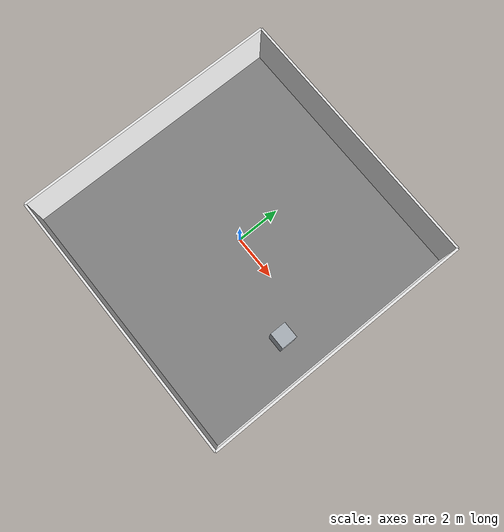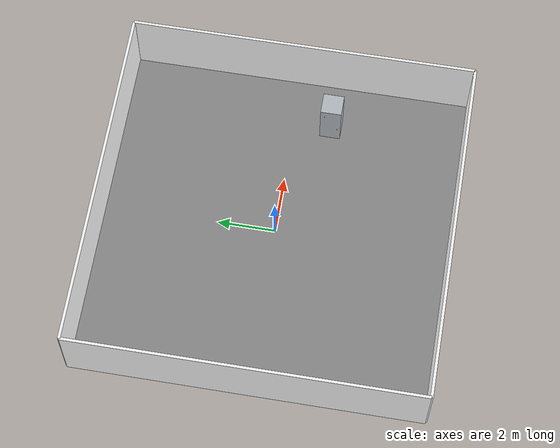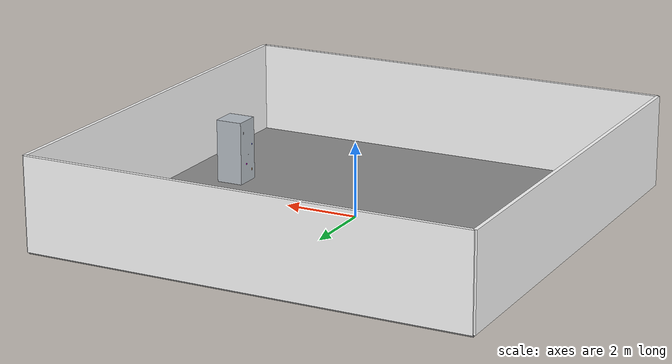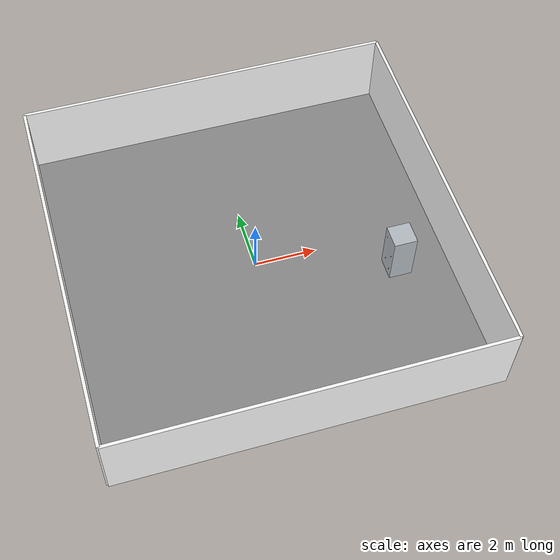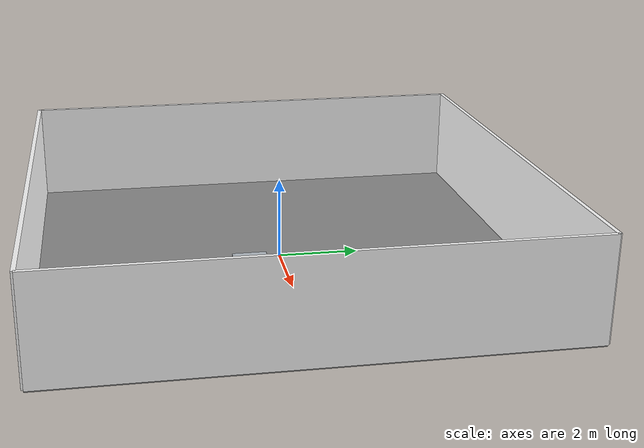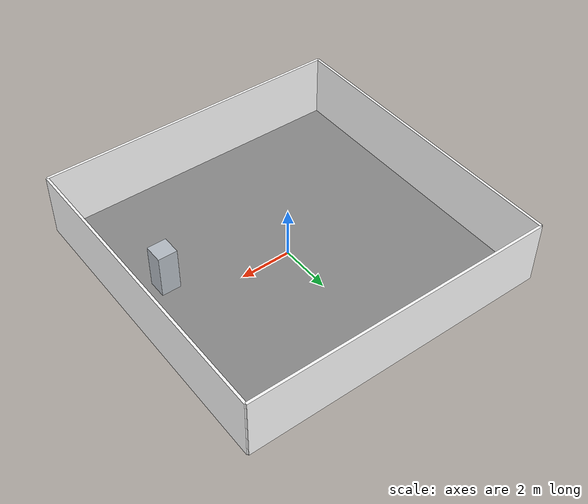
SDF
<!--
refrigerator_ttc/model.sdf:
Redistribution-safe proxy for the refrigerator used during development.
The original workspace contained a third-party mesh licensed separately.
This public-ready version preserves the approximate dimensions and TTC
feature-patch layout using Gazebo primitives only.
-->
<sdf version="1.9">
 <world name="default">
  <plugin filename="gz-sim-physics-system" name="gz::sim::systems::Physics"/>
  <plugin filename="gz-sim-user-commands-system" name="gz::sim::systems::UserCommands"/>
  <plugin filename="gz-sim-scene-broadcaster-system" name="gz::sim::systems::SceneBroadcaster"/>
  <plugin filename="gz-sim-sensors-system" name="gz::sim::systems::Sensors">
   <render_engine>ogre2</render_engine>
  </plugin>
  <plugin filename="gz-sim-imu-system" name="gz::sim::systems::Imu"/>
  <light type="directional" name="sun">
   <cast_shadows>false</cast_shadows>
   <pose>0 0 8 0 0 0</pose>
   <diffuse>0.9 0.9 0.9 1</diffuse>
   <specular>0.25 0.25 0.25 1</specular>
   <attenuation>
    <range>1000</range>
    <constant>0.9</constant>
    <linear>0.01</linear>
    <quadratic>0.001</quadratic>
   </attenuation>
   <direction>-0.4 0.2 -0.9</direction>
  </light>
  <model name="floor">
   <static>true</static>
   <pose>0 0 -0.025 0 0 0</pose>
   <link name="floor_link">
    <collision name="floor_collision"><geometry><box><size>12 12 0.05</size></box></geometry></collision>
    <visual name="floor_visual">
     <geometry><box><size>12 12 0.05</size></box></geometry>
     <material>
      <ambient>0.35 0.35 0.35 1</ambient>
      <diffuse>0.55 0.55 0.55 1</diffuse>
      <specular>0.10 0.10 0.10 1</specular>
     </material>
    </visual>
   </link>
  </model>
  <model name="front_wall">
   <static>true</static>
   <pose>6 0 1.25 0 0 0</pose>
   <link name="wall_link">
    <collision name="collision"><geometry><box><size>0.10 12 2.5</size></box></geometry></collision>
    <visual name="visual">
     <geometry><box><size>0.10 12 2.5</size></box></geometry>
     <material><ambient>1.0 1.0 1.0 1</ambient><diffuse>1.0 1.0 1.0 1</diffuse></material>
    </visual>
   </link>
  </model>
  <model name="back_wall">
   <static>true</static>
   <pose>-6 0 1.25 0 0 0</pose>
   <link name="wall_link">
    <collision name="collision"><geometry><box><size>0.10 12 2.5</size></box></geometry></collision>
    <visual name="visual">
     <geometry><box><size>0.10 12 2.5</size></box></geometry>
     <material><ambient>1.0 1.0 1.0 1</ambient><diffuse>1.0 1.0 1.0 1</diffuse></material>
    </visual>
   </link>
  </model>
  <model name="left_wall">
   <static>true</static>
   <pose>0 6 1.25 0 0 0</pose>
   <link name="wall_link">
    <collision name="collision"><geometry><box><size>12 0.10 2.5</size></box></geometry></collision>
    <visual name="visual">
     <geometry><box><size>12 0.10 2.5</size></box></geometry>
     <material><ambient>1.0 1.0 1.0 1</ambient><diffuse>1.0 1.0 1.0 1</diffuse></material>
    </visual>
   </link>
  </model>
  <model name="right_wall">
   <static>true</static>
   <pose>0 -6 1.25 0 0 0</pose>
   <link name="wall_link">
    <collision name="collision"><geometry><box><size>12 0.10 2.5</size></box></geometry></collision>
    <visual name="visual">
     <geometry><box><size>12 0.10 2.5</size></box></geometry>
     <material><ambient>1.0 1.0 1.0 1</ambient><diffuse>1.0 1.0 1.0 1</diffuse></material>
    </visual>
   </link>
  </model>
  <physics name="physics" type="ode">
   <max_step_size>0.001</max_step_size>
   <real_time_factor>1.0</real_time_factor>
   <real_time_update_rate>1000</real_time_update_rate>
  </physics>
  <scene>
   <ambient>0.35 0.35 0.35 1</ambient>
   <background>0.70 0.78 0.85 1</background>
   <shadows>false</shadows>
  </scene>
  <include>
   <name>target_refrigerator</name>
   <pose>4.3 -1.3 0.0 0 0 -3.142</pose>
   <static>true</static>
   <uri>model://refrigerator_ttc</uri>
  </include>
 </world>
</sdf>

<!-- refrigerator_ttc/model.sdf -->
<sdf version="1.9">
  <model name="refrigerator_ttc">
    <static>true</static>
    <link name="base_link">
      <visual name="refrigerator_body">
        <pose>0 0 0.867923 0 0 0</pose>
        <geometry>
          <box>
            <size>0.734673 0.7239 1.73585</size>
          </box>
        </geometry>
        <material>
          <ambient>0.72 0.75 0.78 1</ambient>
          <diffuse>0.72 0.75 0.78 1</diffuse>
          <specular>0.25 0.25 0.25 1</specular>
        </material>
      </visual>
      <collision name="refrigerator_collision">
        <pose>0 0 0.867923 0 0 0</pose>
        <geometry>
          <box>
            <size>0.734673 0.7239 1.73585</size>
          </box>
        </geometry>
      </collision>
            <!-- TTC FEATURE PATCHES                                       -->
            <!-- Thin visual markers placed slightly in front of fridge    -->

            <visual name="ttc_feature_01">
                <pose>0.34 -0.22 1.42 0 0 0</pose>
                <geometry>
                    <box>
                        <size>0.07 0.008 0.07</size>
                    </box>
                </geometry>
                <material>
                    <ambient>1 1 1 1</ambient>
                    <diffuse>1 1 1 1</diffuse>
                </material>
            </visual>

            <visual name="ttc_feature_02">
                <pose>0.34 0.18 1.32 0 0 0</pose>
                <geometry>
                    <box>
                        <size>0.05 0.008 0.09</size>
                    </box>
                </geometry>
                <material>
                    <ambient>0 0 0 1</ambient>
                    <diffuse>0 0 0 1</diffuse>
                </material>
            </visual>

            <visual name="ttc_feature_03">
                <pose>0.34 -0.10 1.12 0 0 0.7854</pose>
                <geometry>
                    <box>
                        <size>0.06 0.008 0.06</size>
                    </box>
                </geometry>
                <material>
                    <ambient>1 0 0 1</ambient>
                    <diffuse>1 0 0 1</diffuse>
                </material>
            </visual>

            <visual name="ttc_feature_04">
                <pose>0.34 0.23 1.00 0 0 0</pose>
                <geometry>
                    <box>
                        <size>0.08 0.008 0.04</size>
                    </box>
                </geometry>
                <material>
                    <ambient>0 0 1 1</ambient>
                    <diffuse>0 0 1 1</diffuse>
                </material>
            </visual>

            <visual name="ttc_feature_05">
                <pose>0.34 -0.24 0.88 0 0 0</pose>
                <geometry>
                    <box>
                        <size>0.045 0.008 0.10</size>
                    </box>
                </geometry>
                <material>
                    <ambient>1 1 0 1</ambient>
                    <diffuse>1 1 0 1</diffuse>
                </material>
            </visual>

            <visual name="ttc_feature_06">
                <pose>0.34 0.02 0.78 0 0 0.7854</pose>
                <geometry>
                    <box>
                        <size>0.07 0.008 0.07</size>
                    </box>
                </geometry>
                <material>
                    <ambient>1 1 1 1</ambient>
                    <diffuse>1 1 1 1</diffuse>
                </material>
            </visual>

            <visual name="ttc_feature_07">
                <pose>0.34 0.25 0.64 0 0 0</pose>
                <geometry>
                    <box>
                        <size>0.055 0.008 0.055</size>
                    </box>
                </geometry>
                <material>
                    <ambient>0 0 0 1</ambient>
                    <diffuse>0 0 0 1</diffuse>
                </material>
            </visual>

            <visual name="ttc_feature_08">
                <pose>0.34 -0.08 0.52 0 0 0</pose>
                <geometry>
                    <box>
                        <size>0.10 0.008 0.035</size>
                    </box>
                </geometry>
                <material>
                    <ambient>1 0 1 1</ambient>
                    <diffuse>1 0 1 1</diffuse>
                </material>
            </visual>

            <visual name="ttc_feature_09">
                <pose>0.34 -0.26 0.38 0 0 0.7854</pose>
                <geometry>
                    <box>
                        <size>0.055 0.008 0.055</size>
                    </box>
                </geometry>
                <material>
                    <ambient>0 1 1 1</ambient>
                    <diffuse>0 1 1 1</diffuse>
                </material>
            </visual>

            <visual name="ttc_feature_10">
                <pose>0.34 0.20 0.30 0 0 0</pose>
                <geometry>
                    <box>
                        <size>0.075 0.008 0.075</size>
                    </box>
                </geometry>
                <material>
                    <ambient>1 0.5 0 1</ambient>
                    <diffuse>1 0.5 0 1</diffuse>
                </material>
            </visual>

    </link>
  </model>
</sdf>
